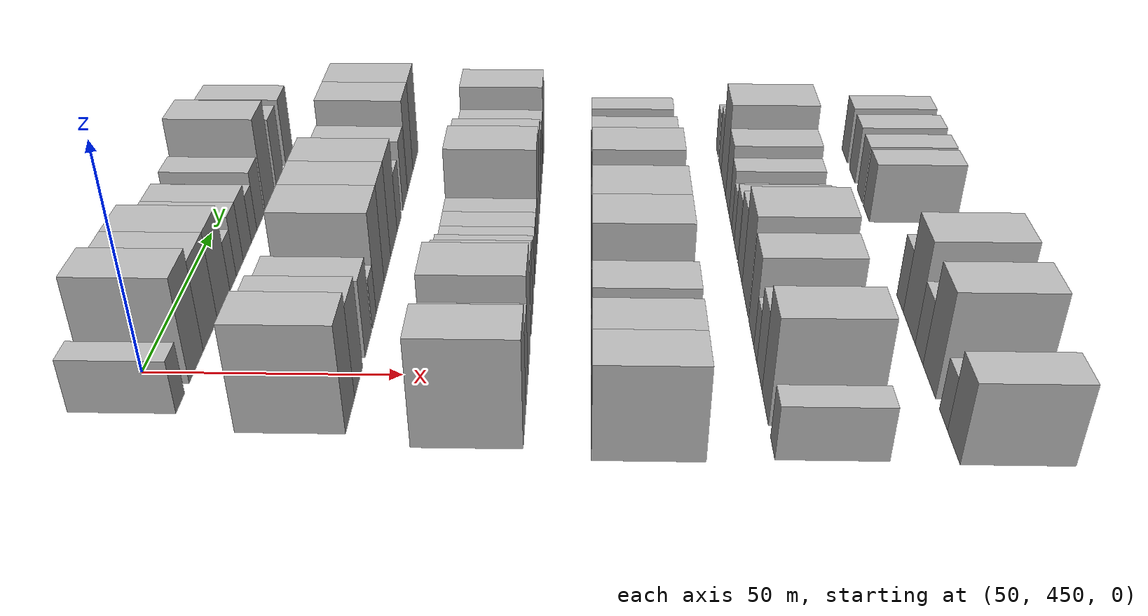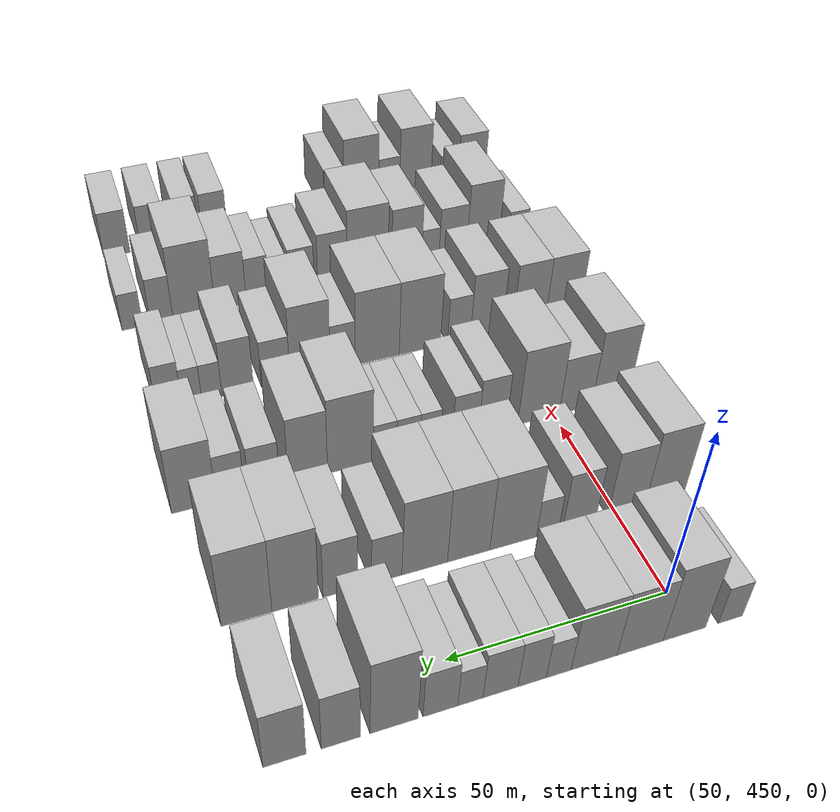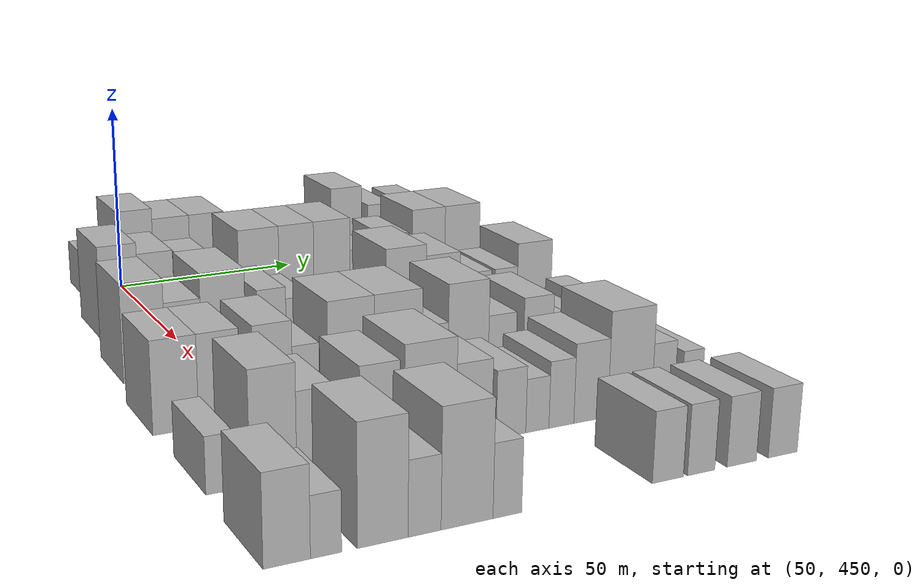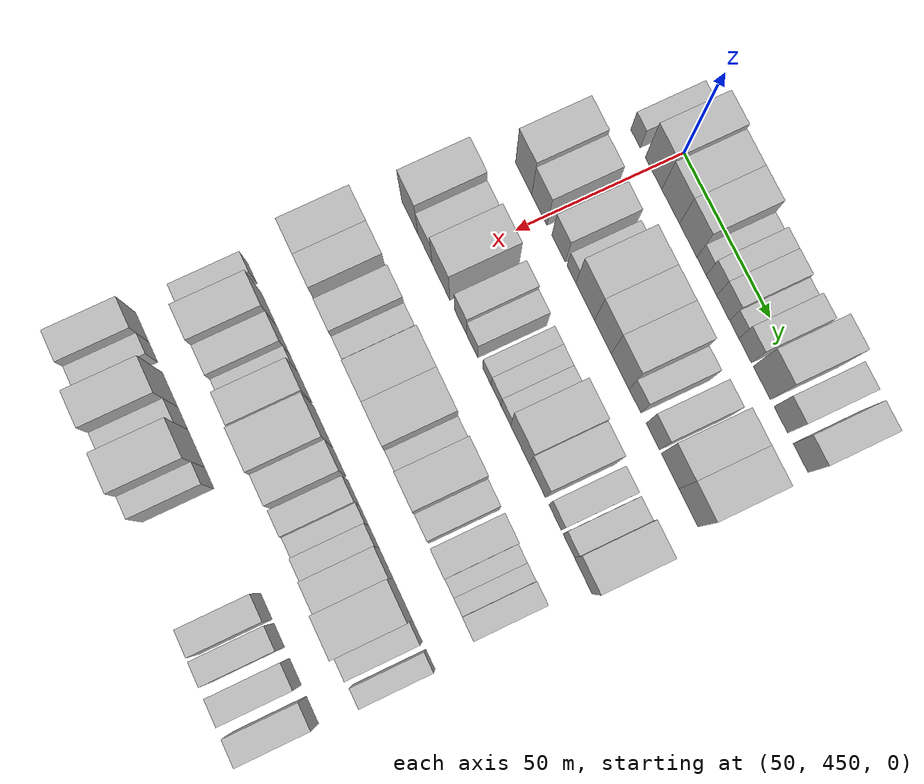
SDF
<sdf version="1.6">
 <world name="default">
  <model name="building_115">
   <static>1</static>
   <pose>50.0000 440.8490 0 0.000000 0.000000 0.000000</pose>
   <link name="link">
    <pose>0 0 6.00 0 0 0</pose>
    <collision name="collision"><geometry><box><size>20.0000 5.6674 12.0000</size></box></geometry></collision>
    <visual name="visual">
     <cast_shadows>0</cast_shadows>
     <geometry><box><size>20.0000 5.6674 12.0000</size></box></geometry>
     <material>
      <script>
       <uri>model://HANNAS_wall/materials/scripts</uri>
       <uri>model://HANNAS_wall/materials/textures</uri>
       <name>vrc/HANNAS_wall</name>
      </script>
     </material>
    </visual>
   </link>
  </model>
  <model name="building_116">
   <static>1</static>
   <pose>50.0000 451.6107 0 0.000000 0.000000 0.000000</pose>
   <link name="link">
    <pose>0 0 12.00 0 0 0</pose>
    <collision name="collision"><geometry><box><size>20.0000 9.8559 24.0000</size></box></geometry></collision>
    <visual name="visual">
     <cast_shadows>0</cast_shadows>
     <geometry><box><size>20.0000 9.8559 24.0000</size></box></geometry>
     <material>
      <script>
       <uri>model://HANNAS_wall/materials/scripts</uri>
       <uri>model://HANNAS_wall/materials/textures</uri>
       <name>vrc/HANNAS_wall</name>
      </script>
     </material>
    </visual>
   </link>
  </model>
  <model name="building_117">
   <static>1</static>
   <pose>50.0000 461.7731 0 0.000000 0.000000 0.000000</pose>
   <link name="link">
    <pose>0 0 10.50 0 0 0</pose>
    <collision name="collision"><geometry><box><size>20.0000 10.4689 21.0000</size></box></geometry></collision>
    <visual name="visual">
     <cast_shadows>0</cast_shadows>
     <geometry><box><size>20.0000 10.4689 21.0000</size></box></geometry>
     <material>
      <script>
       <uri>model://HANNAS_wall/materials/scripts</uri>
       <uri>model://HANNAS_wall/materials/textures</uri>
       <name>vrc/HANNAS_wall</name>
      </script>
     </material>
    </visual>
   </link>
  </model>
  <model name="building_118">
   <static>1</static>
   <pose>50.0000 472.0924 0 0.000000 0.000000 0.000000</pose>
   <link name="link">
    <pose>0 0 10.50 0 0 0</pose>
    <collision name="collision"><geometry><box><size>20.0000 10.1697 21.0000</size></box></geometry></collision>
    <visual name="visual">
     <cast_shadows>0</cast_shadows>
     <geometry><box><size>20.0000 10.1697 21.0000</size></box></geometry>
     <material>
      <script>
       <uri>model://HANNAS_wall/materials/scripts</uri>
       <uri>model://HANNAS_wall/materials/textures</uri>
       <name>vrc/HANNAS_wall</name>
      </script>
     </material>
    </visual>
   </link>
  </model>
  <model name="building_119">
   <static>1</static>
   <pose>50.0000 479.8810 0 0.000000 0.000000 0.000000</pose>
   <link name="link">
    <pose>0 0 6.00 0 0 0</pose>
    <collision name="collision"><geometry><box><size>20.0000 5.4076 12.0000</size></box></geometry></collision>
    <visual name="visual">
     <cast_shadows>0</cast_shadows>
     <geometry><box><size>20.0000 5.4076 12.0000</size></box></geometry>
     <material>
      <script>
       <uri>model://HANNAS_wall/materials/scripts</uri>
       <uri>model://HANNAS_wall/materials/textures</uri>
       <name>vrc/HANNAS_wall</name>
      </script>
     </material>
    </visual>
   </link>
  </model>
  <model name="building_120">
   <static>1</static>
   <pose>50.0000 485.6295 0 0.000000 0.000000 0.000000</pose>
   <link name="link">
    <pose>0 0 7.50 0 0 0</pose>
    <collision name="collision"><geometry><box><size>20.0000 6.0892 15.0000</size></box></geometry></collision>
    <visual name="visual">
     <cast_shadows>0</cast_shadows>
     <geometry><box><size>20.0000 6.0892 15.0000</size></box></geometry>
     <material>
      <script>
       <uri>model://HANNAS_wall/materials/scripts</uri>
       <uri>model://HANNAS_wall/materials/textures</uri>
       <name>vrc/HANNAS_wall</name>
      </script>
     </material>
    </visual>
   </link>
  </model>
  <model name="building_121">
   <static>1</static>
   <pose>50.0000 492.4019 0 0.000000 0.000000 0.000000</pose>
   <link name="link">
    <pose>0 0 7.50 0 0 0</pose>
    <collision name="collision"><geometry><box><size>20.0000 7.4557 15.0000</size></box></geometry></collision>
    <visual name="visual">
     <cast_shadows>0</cast_shadows>
     <geometry><box><size>20.0000 7.4557 15.0000</size></box></geometry>
     <material>
      <script>
       <uri>model://HANNAS_wall/materials/scripts</uri>
       <uri>model://HANNAS_wall/materials/textures</uri>
       <name>vrc/HANNAS_wall</name>
      </script>
     </material>
    </visual>
   </link>
  </model>
  <model name="building_122">
   <static>1</static>
   <pose>50.0000 498.7697 0 0.000000 0.000000 0.000000</pose>
   <link name="link">
    <pose>0 0 6.00 0 0 0</pose>
    <collision name="collision"><geometry><box><size>20.0000 5.2797 12.0000</size></box></geometry></collision>
    <visual name="visual">
     <cast_shadows>0</cast_shadows>
     <geometry><box><size>20.0000 5.2797 12.0000</size></box></geometry>
     <material>
      <script>
       <uri>model://HANNAS_wall/materials/scripts</uri>
       <uri>model://HANNAS_wall/materials/textures</uri>
       <name>vrc/HANNAS_wall</name>
      </script>
     </material>
    </visual>
   </link>
  </model>
  <model name="building_123">
   <static>1</static>
   <pose>50.0000 505.0097 0 0.000000 0.000000 0.000000</pose>
   <link name="link">
    <pose>0 0 7.50 0 0 0</pose>
    <collision name="collision"><geometry><box><size>20.0000 7.2003 15.0000</size></box></geometry></collision>
    <visual name="visual">
     <cast_shadows>0</cast_shadows>
     <geometry><box><size>20.0000 7.2003 15.0000</size></box></geometry>
     <material>
      <script>
       <uri>model://HANNAS_wall/materials/scripts</uri>
       <uri>model://HANNAS_wall/materials/textures</uri>
       <name>vrc/HANNAS_wall</name>
      </script>
     </material>
    </visual>
   </link>
  </model>
  <model name="building_124">
   <static>1</static>
   <pose>50.0000 514.4846 0 0.000000 0.000000 0.000000</pose>
   <link name="link">
    <pose>0 0 12.00 0 0 0</pose>
    <collision name="collision"><geometry><box><size>20.0000 9.7494 24.0000</size></box></geometry></collision>
    <visual name="visual">
     <cast_shadows>0</cast_shadows>
     <geometry><box><size>20.0000 9.7494 24.0000</size></box></geometry>
     <material>
      <script>
       <uri>model://HANNAS_wall/materials/scripts</uri>
       <uri>model://HANNAS_wall/materials/textures</uri>
       <name>vrc/HANNAS_wall</name>
      </script>
     </material>
    </visual>
   </link>
  </model>
  <model name="building_125">
   <static>1</static>
   <pose>50.0000 525.2008 0 0.000000 0.000000 0.000000</pose>
   <link name="link">
    <pose>0 0 9.00 0 0 0</pose>
    <collision name="collision"><geometry><box><size>20.0000 7.6831 18.0000</size></box></geometry></collision>
    <visual name="visual">
     <cast_shadows>0</cast_shadows>
     <geometry><box><size>20.0000 7.6831 18.0000</size></box></geometry>
     <material>
      <script>
       <uri>model://HANNAS_wall/materials/scripts</uri>
       <uri>model://HANNAS_wall/materials/textures</uri>
       <name>vrc/HANNAS_wall</name>
      </script>
     </material>
    </visual>
   </link>
  </model>
  <model name="building_126">
   <static>1</static>
   <pose>50.0000 536.2137 0 0.000000 0.000000 0.000000</pose>
   <link name="link">
    <pose>0 0 9.00 0 0 0</pose>
    <collision name="collision"><geometry><box><size>20.0000 8.3428 18.0000</size></box></geometry></collision>
    <visual name="visual">
     <cast_shadows>0</cast_shadows>
     <geometry><box><size>20.0000 8.3428 18.0000</size></box></geometry>
     <material>
      <script>
       <uri>model://HANNAS_wall/materials/scripts</uri>
       <uri>model://HANNAS_wall/materials/textures</uri>
       <name>vrc/HANNAS_wall</name>
      </script>
     </material>
    </visual>
   </link>
  </model>
  <model name="building_241">
   <static>1</static>
   <pose>82.0000 438.0088 0 0.000000 0.000000 0.000000</pose>
   <link name="link">
    <pose>0 0 12.00 0 0 0</pose>
    <collision name="collision"><geometry><box><size>20.0000 9.9031 24.0000</size></box></geometry></collision>
    <visual name="visual">
     <cast_shadows>0</cast_shadows>
     <geometry><box><size>20.0000 9.9031 24.0000</size></box></geometry>
     <material>
      <script>
       <uri>model://HANNAS_wall/materials/scripts</uri>
       <uri>model://HANNAS_wall/materials/textures</uri>
       <name>vrc/HANNAS_wall</name>
      </script>
     </material>
    </visual>
   </link>
  </model>
  <model name="building_242">
   <static>1</static>
   <pose>82.0000 447.6206 0 0.000000 0.000000 0.000000</pose>
   <link name="link">
    <pose>0 0 10.50 0 0 0</pose>
    <collision name="collision"><geometry><box><size>20.0000 9.3204 21.0000</size></box></geometry></collision>
    <visual name="visual">
     <cast_shadows>0</cast_shadows>
     <geometry><box><size>20.0000 9.3204 21.0000</size></box></geometry>
     <material>
      <script>
       <uri>model://HANNAS_wall/materials/scripts</uri>
       <uri>model://HANNAS_wall/materials/textures</uri>
       <name>vrc/HANNAS_wall</name>
      </script>
     </material>
    </visual>
   </link>
  </model>
  <model name="building_243">
   <static>1</static>
   <pose>82.0000 459.3253 0 0.000000 0.000000 0.000000</pose>
   <link name="link">
    <pose>0 0 9.00 0 0 0</pose>
    <collision name="collision"><geometry><box><size>20.0000 8.0890 18.0000</size></box></geometry></collision>
    <visual name="visual">
     <cast_shadows>0</cast_shadows>
     <geometry><box><size>20.0000 8.0890 18.0000</size></box></geometry>
     <material>
      <script>
       <uri>model://HANNAS_wall/materials/scripts</uri>
       <uri>model://HANNAS_wall/materials/textures</uri>
       <name>vrc/HANNAS_wall</name>
      </script>
     </material>
    </visual>
   </link>
  </model>
  <model name="building_244">
   <static>1</static>
   <pose>82.0000 467.0407 0 0.000000 0.000000 0.000000</pose>
   <link name="link">
    <pose>0 0 6.00 0 0 0</pose>
    <collision name="collision"><geometry><box><size>20.0000 5.3417 12.0000</size></box></geometry></collision>
    <visual name="visual">
     <cast_shadows>0</cast_shadows>
     <geometry><box><size>20.0000 5.3417 12.0000</size></box></geometry>
     <material>
      <script>
       <uri>model://HANNAS_wall/materials/scripts</uri>
       <uri>model://HANNAS_wall/materials/textures</uri>
       <name>vrc/HANNAS_wall</name>
      </script>
     </material>
    </visual>
   </link>
  </model>
  <model name="building_245">
   <static>1</static>
   <pose>82.0000 475.2869 0 0.000000 0.000000 0.000000</pose>
   <link name="link">
    <pose>0 0 12.00 0 0 0</pose>
    <collision name="collision"><geometry><box><size>20.0000 11.1506 24.0000</size></box></geometry></collision>
    <visual name="visual">
     <cast_shadows>0</cast_shadows>
     <geometry><box><size>20.0000 11.1506 24.0000</size></box></geometry>
     <material>
      <script>
       <uri>model://HANNAS_wall/materials/scripts</uri>
       <uri>model://HANNAS_wall/materials/textures</uri>
       <name>vrc/HANNAS_wall</name>
      </script>
     </material>
    </visual>
   </link>
  </model>
  <model name="building_246">
   <static>1</static>
   <pose>82.0000 485.7920 0 0.000000 0.000000 0.000000</pose>
   <link name="link">
    <pose>0 0 12.00 0 0 0</pose>
    <collision name="collision"><geometry><box><size>20.0000 9.8596 24.0000</size></box></geometry></collision>
    <visual name="visual">
     <cast_shadows>0</cast_shadows>
     <geometry><box><size>20.0000 9.8596 24.0000</size></box></geometry>
     <material>
      <script>
       <uri>model://HANNAS_wall/materials/scripts</uri>
       <uri>model://HANNAS_wall/materials/textures</uri>
       <name>vrc/HANNAS_wall</name>
      </script>
     </material>
    </visual>
   </link>
  </model>
  <model name="building_247">
   <static>1</static>
   <pose>82.0000 495.9526 0 0.000000 0.000000 0.000000</pose>
   <link name="link">
    <pose>0 0 12.00 0 0 0</pose>
    <collision name="collision"><geometry><box><size>20.0000 10.4616 24.0000</size></box></geometry></collision>
    <visual name="visual">
     <cast_shadows>0</cast_shadows>
     <geometry><box><size>20.0000 10.4616 24.0000</size></box></geometry>
     <material>
      <script>
       <uri>model://HANNAS_wall/materials/scripts</uri>
       <uri>model://HANNAS_wall/materials/textures</uri>
       <name>vrc/HANNAS_wall</name>
      </script>
     </material>
    </visual>
   </link>
  </model>
  <model name="building_248">
   <static>1</static>
   <pose>82.0000 504.6095 0 0.000000 0.000000 0.000000</pose>
   <link name="link">
    <pose>0 0 7.50 0 0 0</pose>
    <collision name="collision"><geometry><box><size>20.0000 6.8522 15.0000</size></box></geometry></collision>
    <visual name="visual">
     <cast_shadows>0</cast_shadows>
     <geometry><box><size>20.0000 6.8522 15.0000</size></box></geometry>
     <material>
      <script>
       <uri>model://HANNAS_wall/materials/scripts</uri>
       <uri>model://HANNAS_wall/materials/textures</uri>
       <name>vrc/HANNAS_wall</name>
      </script>
     </material>
    </visual>
   </link>
  </model>
  <model name="building_249">
   <static>1</static>
   <pose>82.0000 514.8905 0 0.000000 0.000000 0.000000</pose>
   <link name="link">
    <pose>0 0 9.00 0 0 0</pose>
    <collision name="collision"><geometry><box><size>20.0000 7.7097 18.0000</size></box></geometry></collision>
    <visual name="visual">
     <cast_shadows>0</cast_shadows>
     <geometry><box><size>20.0000 7.7097 18.0000</size></box></geometry>
     <material>
      <script>
       <uri>model://HANNAS_wall/materials/scripts</uri>
       <uri>model://HANNAS_wall/materials/textures</uri>
       <name>vrc/HANNAS_wall</name>
      </script>
     </material>
    </visual>
   </link>
  </model>
  <model name="building_250">
   <static>1</static>
   <pose>82.0000 524.7805 0 0.000000 0.000000 0.000000</pose>
   <link name="link">
    <pose>0 0 12.00 0 0 0</pose>
    <collision name="collision"><geometry><box><size>20.0000 10.0704 24.0000</size></box></geometry></collision>
    <visual name="visual">
     <cast_shadows>0</cast_shadows>
     <geometry><box><size>20.0000 10.0704 24.0000</size></box></geometry>
     <material>
      <script>
       <uri>model://HANNAS_wall/materials/scripts</uri>
       <uri>model://HANNAS_wall/materials/textures</uri>
       <name>vrc/HANNAS_wall</name>
      </script>
     </material>
    </visual>
   </link>
  </model>
  <model name="building_251">
   <static>1</static>
   <pose>82.0000 535.2192 0 0.000000 0.000000 0.000000</pose>
   <link name="link">
    <pose>0 0 12.00 0 0 0</pose>
    <collision name="collision"><geometry><box><size>20.0000 10.8071 24.0000</size></box></geometry></collision>
    <visual name="visual">
     <cast_shadows>0</cast_shadows>
     <geometry><box><size>20.0000 10.8071 24.0000</size></box></geometry>
     <material>
      <script>
       <uri>model://HANNAS_wall/materials/scripts</uri>
       <uri>model://HANNAS_wall/materials/textures</uri>
       <name>vrc/HANNAS_wall</name>
      </script>
     </material>
    </visual>
   </link>
  </model>
  <model name="building_362">
   <static>1</static>
   <pose>114.0000 434.7817 0 0.000000 0.000000 0.000000</pose>
   <link name="link">
    <pose>0 0 12.00 0 0 0</pose>
    <collision name="collision"><geometry><box><size>20.0000 10.1036 24.0000</size></box></geometry></collision>
    <visual name="visual">
     <cast_shadows>0</cast_shadows>
     <geometry><box><size>20.0000 10.1036 24.0000</size></box></geometry>
     <material>
      <script>
       <uri>model://HANNAS_wall/materials/scripts</uri>
       <uri>model://HANNAS_wall/materials/textures</uri>
       <name>vrc/HANNAS_wall</name>
      </script>
     </material>
    </visual>
   </link>
  </model>
  <model name="building_363">
   <static>1</static>
   <pose>114.0000 444.2483 0 0.000000 0.000000 0.000000</pose>
   <link name="link">
    <pose>0 0 9.00 0 0 0</pose>
    <collision name="collision"><geometry><box><size>20.0000 8.8295 18.0000</size></box></geometry></collision>
    <visual name="visual">
     <cast_shadows>0</cast_shadows>
     <geometry><box><size>20.0000 8.8295 18.0000</size></box></geometry>
     <material>
      <script>
       <uri>model://HANNAS_wall/materials/scripts</uri>
       <uri>model://HANNAS_wall/materials/textures</uri>
       <name>vrc/HANNAS_wall</name>
      </script>
     </material>
    </visual>
   </link>
  </model>
  <model name="building_364">
   <static>1</static>
   <pose>114.0000 454.1646 0 0.000000 0.000000 0.000000</pose>
   <link name="link">
    <pose>0 0 12.00 0 0 0</pose>
    <collision name="collision"><geometry><box><size>20.0000 11.0031 24.0000</size></box></geometry></collision>
    <visual name="visual">
     <cast_shadows>0</cast_shadows>
     <geometry><box><size>20.0000 11.0031 24.0000</size></box></geometry>
     <material>
      <script>
       <uri>model://HANNAS_wall/materials/scripts</uri>
       <uri>model://HANNAS_wall/materials/textures</uri>
       <name>vrc/HANNAS_wall</name>
      </script>
     </material>
    </visual>
   </link>
  </model>
  <model name="building_365">
   <static>1</static>
   <pose>114.0000 466.3253 0 0.000000 0.000000 0.000000</pose>
   <link name="link">
    <pose>0 0 9.00 0 0 0</pose>
    <collision name="collision"><geometry><box><size>20.0000 7.3182 18.0000</size></box></geometry></collision>
    <visual name="visual">
     <cast_shadows>0</cast_shadows>
     <geometry><box><size>20.0000 7.3182 18.0000</size></box></geometry>
     <material>
      <script>
       <uri>model://HANNAS_wall/materials/scripts</uri>
       <uri>model://HANNAS_wall/materials/textures</uri>
       <name>vrc/HANNAS_wall</name>
      </script>
     </material>
    </visual>
   </link>
  </model>
  <model name="building_366">
   <static>1</static>
   <pose>114.0000 473.3398 0 0.000000 0.000000 0.000000</pose>
   <link name="link">
    <pose>0 0 7.50 0 0 0</pose>
    <collision name="collision"><geometry><box><size>20.0000 6.7108 15.0000</size></box></geometry></collision>
    <visual name="visual">
     <cast_shadows>0</cast_shadows>
     <geometry><box><size>20.0000 6.7108 15.0000</size></box></geometry>
     <material>
      <script>
       <uri>model://HANNAS_wall/materials/scripts</uri>
       <uri>model://HANNAS_wall/materials/textures</uri>
       <name>vrc/HANNAS_wall</name>
      </script>
     </material>
    </visual>
   </link>
  </model>
  <model name="building_367">
   <static>1</static>
   <pose>114.0000 482.2503 0 0.000000 0.000000 0.000000</pose>
   <link name="link">
    <pose>0 0 6.00 0 0 0</pose>
    <collision name="collision"><geometry><box><size>20.0000 5.1102 12.0000</size></box></geometry></collision>
    <visual name="visual">
     <cast_shadows>0</cast_shadows>
     <geometry><box><size>20.0000 5.1102 12.0000</size></box></geometry>
     <material>
      <script>
       <uri>model://HANNAS_wall/materials/scripts</uri>
       <uri>model://HANNAS_wall/materials/textures</uri>
       <name>vrc/HANNAS_wall</name>
      </script>
     </material>
    </visual>
   </link>
  </model>
  <model name="building_368">
   <static>1</static>
   <pose>114.0000 487.7991 0 0.000000 0.000000 0.000000</pose>
   <link name="link">
    <pose>0 0 6.00 0 0 0</pose>
    <collision name="collision"><geometry><box><size>20.0000 5.9874 12.0000</size></box></geometry></collision>
    <visual name="visual">
     <cast_shadows>0</cast_shadows>
     <geometry><box><size>20.0000 5.9874 12.0000</size></box></geometry>
     <material>
      <script>
       <uri>model://HANNAS_wall/materials/scripts</uri>
       <uri>model://HANNAS_wall/materials/textures</uri>
       <name>vrc/HANNAS_wall</name>
      </script>
     </material>
    </visual>
   </link>
  </model>
  <model name="building_369">
   <static>1</static>
   <pose>114.0000 493.6747 0 0.000000 0.000000 0.000000</pose>
   <link name="link">
    <pose>0 0 6.00 0 0 0</pose>
    <collision name="collision"><geometry><box><size>20.0000 5.7638 12.0000</size></box></geometry></collision>
    <visual name="visual">
     <cast_shadows>0</cast_shadows>
     <geometry><box><size>20.0000 5.7638 12.0000</size></box></geometry>
     <material>
      <script>
       <uri>model://HANNAS_wall/materials/scripts</uri>
       <uri>model://HANNAS_wall/materials/textures</uri>
       <name>vrc/HANNAS_wall</name>
      </script>
     </material>
    </visual>
   </link>
  </model>
  <model name="building_370">
   <static>1</static>
   <pose>114.0000 502.1155 0 0.000000 0.000000 0.000000</pose>
   <link name="link">
    <pose>0 0 12.00 0 0 0</pose>
    <collision name="collision"><geometry><box><size>20.0000 11.1179 24.0000</size></box></geometry></collision>
    <visual name="visual">
     <cast_shadows>0</cast_shadows>
     <geometry><box><size>20.0000 11.1179 24.0000</size></box></geometry>
     <material>
      <script>
       <uri>model://HANNAS_wall/materials/scripts</uri>
       <uri>model://HANNAS_wall/materials/textures</uri>
       <name>vrc/HANNAS_wall</name>
      </script>
     </material>
    </visual>
   </link>
  </model>
  <model name="building_371">
   <static>1</static>
   <pose>114.0000 512.4070 0 0.000000 0.000000 0.000000</pose>
   <link name="link">
    <pose>0 0 10.50 0 0 0</pose>
    <collision name="collision"><geometry><box><size>20.0000 9.4650 21.0000</size></box></geometry></collision>
    <visual name="visual">
     <cast_shadows>0</cast_shadows>
     <geometry><box><size>20.0000 9.4650 21.0000</size></box></geometry>
     <material>
      <script>
       <uri>model://HANNAS_wall/materials/scripts</uri>
       <uri>model://HANNAS_wall/materials/textures</uri>
       <name>vrc/HANNAS_wall</name>
      </script>
     </material>
    </visual>
   </link>
  </model>
  <model name="building_372">
   <static>1</static>
   <pose>114.0000 522.7609 0 0.000000 0.000000 0.000000</pose>
   <link name="link">
    <pose>0 0 7.50 0 0 0</pose>
    <collision name="collision"><geometry><box><size>20.0000 7.2428 15.0000</size></box></geometry></collision>
    <visual name="visual">
     <cast_shadows>0</cast_shadows>
     <geometry><box><size>20.0000 7.2428 15.0000</size></box></geometry>
     <material>
      <script>
       <uri>model://HANNAS_wall/materials/scripts</uri>
       <uri>model://HANNAS_wall/materials/textures</uri>
       <name>vrc/HANNAS_wall</name>
      </script>
     </material>
    </visual>
   </link>
  </model>
  <model name="building_373">
   <static>1</static>
   <pose>114.0000 530.6936 0 0.000000 0.000000 0.000000</pose>
   <link name="link">
    <pose>0 0 7.50 0 0 0</pose>
    <collision name="collision"><geometry><box><size>20.0000 6.6227 15.0000</size></box></geometry></collision>
    <visual name="visual">
     <cast_shadows>0</cast_shadows>
     <geometry><box><size>20.0000 6.6227 15.0000</size></box></geometry>
     <material>
      <script>
       <uri>model://HANNAS_wall/materials/scripts</uri>
       <uri>model://HANNAS_wall/materials/textures</uri>
       <name>vrc/HANNAS_wall</name>
      </script>
     </material>
    </visual>
   </link>
  </model>
  <model name="building_374">
   <static>1</static>
   <pose>114.0000 539.1175 0 0.000000 0.000000 0.000000</pose>
   <link name="link">
    <pose>0 0 10.50 0 0 0</pose>
    <collision name="collision"><geometry><box><size>20.0000 10.2252 21.0000</size></box></geometry></collision>
    <visual name="visual">
     <cast_shadows>0</cast_shadows>
     <geometry><box><size>20.0000 10.2252 21.0000</size></box></geometry>
     <material>
      <script>
       <uri>model://HANNAS_wall/materials/scripts</uri>
       <uri>model://HANNAS_wall/materials/textures</uri>
       <name>vrc/HANNAS_wall</name>
      </script>
     </material>
    </visual>
   </link>
  </model>
  <model name="building_478">
   <static>1</static>
   <pose>146.0000 432.0566 0 0.000000 0.000000 0.000000</pose>
   <link name="link">
    <pose>0 0 10.50 0 0 0</pose>
    <collision name="collision"><geometry><box><size>20.0000 10.1136 21.0000</size></box></geometry></collision>
    <visual name="visual">
     <cast_shadows>0</cast_shadows>
     <geometry><box><size>20.0000 10.1136 21.0000</size></box></geometry>
     <material>
      <script>
       <uri>model://HANNAS_wall/materials/scripts</uri>
       <uri>model://HANNAS_wall/materials/textures</uri>
       <name>vrc/HANNAS_wall</name>
      </script>
     </material>
    </visual>
   </link>
  </model>
  <model name="building_479">
   <static>1</static>
   <pose>146.0000 441.8264 0 0.000000 0.000000 0.000000</pose>
   <link name="link">
    <pose>0 0 10.50 0 0 0</pose>
    <collision name="collision"><geometry><box><size>20.0000 9.4258 21.0000</size></box></geometry></collision>
    <visual name="visual">
     <cast_shadows>0</cast_shadows>
     <geometry><box><size>20.0000 9.4258 21.0000</size></box></geometry>
     <material>
      <script>
       <uri>model://HANNAS_wall/materials/scripts</uri>
       <uri>model://HANNAS_wall/materials/textures</uri>
       <name>vrc/HANNAS_wall</name>
      </script>
     </material>
    </visual>
   </link>
  </model>
  <model name="building_480">
   <static>1</static>
   <pose>146.0000 454.0785 0 0.000000 0.000000 0.000000</pose>
   <link name="link">
    <pose>0 0 10.50 0 0 0</pose>
    <collision name="collision"><geometry><box><size>20.0000 9.0784 21.0000</size></box></geometry></collision>
    <visual name="visual">
     <cast_shadows>0</cast_shadows>
     <geometry><box><size>20.0000 9.0784 21.0000</size></box></geometry>
     <material>
      <script>
       <uri>model://HANNAS_wall/materials/scripts</uri>
       <uri>model://HANNAS_wall/materials/textures</uri>
       <name>vrc/HANNAS_wall</name>
      </script>
     </material>
    </visual>
   </link>
  </model>
  <model name="building_481">
   <static>1</static>
   <pose>146.0000 461.8183 0 0.000000 0.000000 0.000000</pose>
   <link name="link">
    <pose>0 0 7.50 0 0 0</pose>
    <collision name="collision"><geometry><box><size>20.0000 6.4013 15.0000</size></box></geometry></collision>
    <visual name="visual">
     <cast_shadows>0</cast_shadows>
     <geometry><box><size>20.0000 6.4013 15.0000</size></box></geometry>
     <material>
      <script>
       <uri>model://HANNAS_wall/materials/scripts</uri>
       <uri>model://HANNAS_wall/materials/textures</uri>
       <name>vrc/HANNAS_wall</name>
      </script>
     </material>
    </visual>
   </link>
  </model>
  <model name="building_482">
   <static>1</static>
   <pose>146.0000 472.6911 0 0.000000 0.000000 0.000000</pose>
   <link name="link">
    <pose>0 0 12.00 0 0 0</pose>
    <collision name="collision"><geometry><box><size>20.0000 11.3442 24.0000</size></box></geometry></collision>
    <visual name="visual">
     <cast_shadows>0</cast_shadows>
     <geometry><box><size>20.0000 11.3442 24.0000</size></box></geometry>
     <material>
      <script>
       <uri>model://HANNAS_wall/materials/scripts</uri>
       <uri>model://HANNAS_wall/materials/textures</uri>
       <name>vrc/HANNAS_wall</name>
      </script>
     </material>
    </visual>
   </link>
  </model>
  <model name="building_483">
   <static>1</static>
   <pose>146.0000 484.3176 0 0.000000 0.000000 0.000000</pose>
   <link name="link">
    <pose>0 0 12.00 0 0 0</pose>
    <collision name="collision"><geometry><box><size>20.0000 11.9088 24.0000</size></box></geometry></collision>
    <visual name="visual">
     <cast_shadows>0</cast_shadows>
     <geometry><box><size>20.0000 11.9088 24.0000</size></box></geometry>
     <material>
      <script>
       <uri>model://HANNAS_wall/materials/scripts</uri>
       <uri>model://HANNAS_wall/materials/textures</uri>
       <name>vrc/HANNAS_wall</name>
      </script>
     </material>
    </visual>
   </link>
  </model>
  <model name="building_484">
   <static>1</static>
   <pose>146.0000 493.5984 0 0.000000 0.000000 0.000000</pose>
   <link name="link">
    <pose>0 0 7.50 0 0 0</pose>
    <collision name="collision"><geometry><box><size>20.0000 6.6528 15.0000</size></box></geometry></collision>
    <visual name="visual">
     <cast_shadows>0</cast_shadows>
     <geometry><box><size>20.0000 6.6528 15.0000</size></box></geometry>
     <material>
      <script>
       <uri>model://HANNAS_wall/materials/scripts</uri>
       <uri>model://HANNAS_wall/materials/textures</uri>
       <name>vrc/HANNAS_wall</name>
      </script>
     </material>
    </visual>
   </link>
  </model>
  <model name="building_485">
   <static>1</static>
   <pose>146.0000 502.2058 0 0.000000 0.000000 0.000000</pose>
   <link name="link">
    <pose>0 0 12.00 0 0 0</pose>
    <collision name="collision"><geometry><box><size>20.0000 10.5621 24.0000</size></box></geometry></collision>
    <visual name="visual">
     <cast_shadows>0</cast_shadows>
     <geometry><box><size>20.0000 10.5621 24.0000</size></box></geometry>
     <material>
      <script>
       <uri>model://HANNAS_wall/materials/scripts</uri>
       <uri>model://HANNAS_wall/materials/textures</uri>
       <name>vrc/HANNAS_wall</name>
      </script>
     </material>
    </visual>
   </link>
  </model>
  <model name="building_486">
   <static>1</static>
   <pose>146.0000 511.1826 0 0.000000 0.000000 0.000000</pose>
   <link name="link">
    <pose>0 0 7.50 0 0 0</pose>
    <collision name="collision"><geometry><box><size>20.0000 7.3914 15.0000</size></box></geometry></collision>
    <visual name="visual">
     <cast_shadows>0</cast_shadows>
     <geometry><box><size>20.0000 7.3914 15.0000</size></box></geometry>
     <material>
      <script>
       <uri>model://HANNAS_wall/materials/scripts</uri>
       <uri>model://HANNAS_wall/materials/textures</uri>
       <name>vrc/HANNAS_wall</name>
      </script>
     </material>
    </visual>
   </link>
  </model>
  <model name="building_487">
   <static>1</static>
   <pose>146.0000 520.8997 0 0.000000 0.000000 0.000000</pose>
   <link name="link">
    <pose>0 0 9.00 0 0 0</pose>
    <collision name="collision"><geometry><box><size>20.0000 8.0429 18.0000</size></box></geometry></collision>
    <visual name="visual">
     <cast_shadows>0</cast_shadows>
     <geometry><box><size>20.0000 8.0429 18.0000</size></box></geometry>
     <material>
      <script>
       <uri>model://HANNAS_wall/materials/scripts</uri>
       <uri>model://HANNAS_wall/materials/textures</uri>
       <name>vrc/HANNAS_wall</name>
      </script>
     </material>
    </visual>
   </link>
  </model>
  <model name="building_488">
   <static>1</static>
   <pose>146.0000 527.4588 0 0.000000 0.000000 0.000000</pose>
   <link name="link">
    <pose>0 0 6.00 0 0 0</pose>
    <collision name="collision"><geometry><box><size>20.0000 5.0753 12.0000</size></box></geometry></collision>
    <visual name="visual">
     <cast_shadows>0</cast_shadows>
     <geometry><box><size>20.0000 5.0753 12.0000</size></box></geometry>
     <material>
      <script>
       <uri>model://HANNAS_wall/materials/scripts</uri>
       <uri>model://HANNAS_wall/materials/textures</uri>
       <name>vrc/HANNAS_wall</name>
      </script>
     </material>
    </visual>
   </link>
  </model>
  <model name="building_489">
   <static>1</static>
   <pose>146.0000 532.4767 0 0.000000 0.000000 0.000000</pose>
   <link name="link">
    <pose>0 0 6.00 0 0 0</pose>
    <collision name="collision"><geometry><box><size>20.0000 4.9603 12.0000</size></box></geometry></collision>
    <visual name="visual">
     <cast_shadows>0</cast_shadows>
     <geometry><box><size>20.0000 4.9603 12.0000</size></box></geometry>
     <material>
      <script>
       <uri>model://HANNAS_wall/materials/scripts</uri>
       <uri>model://HANNAS_wall/materials/textures</uri>
       <name>vrc/HANNAS_wall</name>
      </script>
     </material>
    </visual>
   </link>
  </model>
  <model name="building_490">
   <static>1</static>
   <pose>146.0000 538.1422 0 0.000000 0.000000 0.000000</pose>
   <link name="link">
    <pose>0 0 7.50 0 0 0</pose>
    <collision name="collision"><geometry><box><size>20.0000 6.3708 15.0000</size></box></geometry></collision>
    <visual name="visual">
     <cast_shadows>0</cast_shadows>
     <geometry><box><size>20.0000 6.3708 15.0000</size></box></geometry>
     <material>
      <script>
       <uri>model://HANNAS_wall/materials/scripts</uri>
       <uri>model://HANNAS_wall/materials/textures</uri>
       <name>vrc/HANNAS_wall</name>
      </script>
     </material>
    </visual>
   </link>
  </model>
  <model name="building_595">
   <static>1</static>
   <pose>178.0000 430.7463 0 0.000000 0.000000 0.000000</pose>
   <link name="link">
    <pose>0 0 6.00 0 0 0</pose>
    <collision name="collision"><geometry><box><size>20.0000 5.9299 12.0000</size></box></geometry></collision>
    <visual name="visual">
     <cast_shadows>0</cast_shadows>
     <geometry><box><size>20.0000 5.9299 12.0000</size></box></geometry>
     <material>
      <script>
       <uri>model://HANNAS_wall/materials/scripts</uri>
       <uri>model://HANNAS_wall/materials/textures</uri>
       <name>vrc/HANNAS_wall</name>
      </script>
     </material>
    </visual>
   </link>
  </model>
  <model name="building_596">
   <static>1</static>
   <pose>178.0000 441.6002 0 0.000000 0.000000 0.000000</pose>
   <link name="link">
    <pose>0 0 12.00 0 0 0</pose>
    <collision name="collision"><geometry><box><size>20.0000 9.7781 24.0000</size></box></geometry></collision>
    <visual name="visual">
     <cast_shadows>0</cast_shadows>
     <geometry><box><size>20.0000 9.7781 24.0000</size></box></geometry>
     <material>
      <script>
       <uri>model://HANNAS_wall/materials/scripts</uri>
       <uri>model://HANNAS_wall/materials/textures</uri>
       <name>vrc/HANNAS_wall</name>
      </script>
     </material>
    </visual>
   </link>
  </model>
  <model name="building_597">
   <static>1</static>
   <pose>178.0000 450.6566 0 0.000000 0.000000 0.000000</pose>
   <link name="link">
    <pose>0 0 9.00 0 0 0</pose>
    <collision name="collision"><geometry><box><size>20.0000 8.3346 18.0000</size></box></geometry></collision>
    <visual name="visual">
     <cast_shadows>0</cast_shadows>
     <geometry><box><size>20.0000 8.3346 18.0000</size></box></geometry>
     <material>
      <script>
       <uri>model://HANNAS_wall/materials/scripts</uri>
       <uri>model://HANNAS_wall/materials/textures</uri>
       <name>vrc/HANNAS_wall</name>
      </script>
     </material>
    </visual>
   </link>
  </model>
  <model name="building_598">
   <static>1</static>
   <pose>178.0000 457.4311 0 0.000000 0.000000 0.000000</pose>
   <link name="link">
    <pose>0 0 6.00 0 0 0</pose>
    <collision name="collision"><geometry><box><size>20.0000 5.2143 12.0000</size></box></geometry></collision>
    <visual name="visual">
     <cast_shadows>0</cast_shadows>
     <geometry><box><size>20.0000 5.2143 12.0000</size></box></geometry>
     <material>
      <script>
       <uri>model://HANNAS_wall/materials/scripts</uri>
       <uri>model://HANNAS_wall/materials/textures</uri>
       <name>vrc/HANNAS_wall</name>
      </script>
     </material>
    </visual>
   </link>
  </model>
  <model name="building_599">
   <static>1</static>
   <pose>178.0000 464.5080 0 0.000000 0.000000 0.000000</pose>
   <link name="link">
    <pose>0 0 10.50 0 0 0</pose>
    <collision name="collision"><geometry><box><size>20.0000 8.9395 21.0000</size></box></geometry></collision>
    <visual name="visual">
     <cast_shadows>0</cast_shadows>
     <geometry><box><size>20.0000 8.9395 21.0000</size></box></geometry>
     <material>
      <script>
       <uri>model://HANNAS_wall/materials/scripts</uri>
       <uri>model://HANNAS_wall/materials/textures</uri>
       <name>vrc/HANNAS_wall</name>
      </script>
     </material>
    </visual>
   </link>
  </model>
  <model name="building_600">
   <static>1</static>
   <pose>178.0000 475.9315 0 0.000000 0.000000 0.000000</pose>
   <link name="link">
    <pose>0 0 12.00 0 0 0</pose>
    <collision name="collision"><geometry><box><size>20.0000 11.9074 24.0000</size></box></geometry></collision>
    <visual name="visual">
     <cast_shadows>0</cast_shadows>
     <geometry><box><size>20.0000 11.9074 24.0000</size></box></geometry>
     <material>
      <script>
       <uri>model://HANNAS_wall/materials/scripts</uri>
       <uri>model://HANNAS_wall/materials/textures</uri>
       <name>vrc/HANNAS_wall</name>
      </script>
     </material>
    </visual>
   </link>
  </model>
  <model name="building_601">
   <static>1</static>
   <pose>178.0000 486.1060 0 0.000000 0.000000 0.000000</pose>
   <link name="link">
    <pose>0 0 9.00 0 0 0</pose>
    <collision name="collision"><geometry><box><size>20.0000 8.4417 18.0000</size></box></geometry></collision>
    <visual name="visual">
     <cast_shadows>0</cast_shadows>
     <geometry><box><size>20.0000 8.4417 18.0000</size></box></geometry>
     <material>
      <script>
       <uri>model://HANNAS_wall/materials/scripts</uri>
       <uri>model://HANNAS_wall/materials/textures</uri>
       <name>vrc/HANNAS_wall</name>
      </script>
     </material>
    </visual>
   </link>
  </model>
  <model name="building_602">
   <static>1</static>
   <pose>178.0000 494.9160 0 0.000000 0.000000 0.000000</pose>
   <link name="link">
    <pose>0 0 7.50 0 0 0</pose>
    <collision name="collision"><geometry><box><size>20.0000 7.1783 15.0000</size></box></geometry></collision>
    <visual name="visual">
     <cast_shadows>0</cast_shadows>
     <geometry><box><size>20.0000 7.1783 15.0000</size></box></geometry>
     <material>
      <script>
       <uri>model://HANNAS_wall/materials/scripts</uri>
       <uri>model://HANNAS_wall/materials/textures</uri>
       <name>vrc/HANNAS_wall</name>
      </script>
     </material>
    </visual>
   </link>
  </model>
  <model name="building_603">
   <static>1</static>
   <pose>178.0000 501.3531 0 0.000000 0.000000 0.000000</pose>
   <link name="link">
    <pose>0 0 6.00 0 0 0</pose>
    <collision name="collision"><geometry><box><size>20.0000 5.6959 12.0000</size></box></geometry></collision>
    <visual name="visual">
     <cast_shadows>0</cast_shadows>
     <geometry><box><size>20.0000 5.6959 12.0000</size></box></geometry>
     <material>
      <script>
       <uri>model://HANNAS_wall/materials/scripts</uri>
       <uri>model://HANNAS_wall/materials/textures</uri>
       <name>vrc/HANNAS_wall</name>
      </script>
     </material>
    </visual>
   </link>
  </model>
  <model name="building_604">
   <static>1</static>
   <pose>178.0000 507.3184 0 0.000000 0.000000 0.000000</pose>
   <link name="link">
    <pose>0 0 7.50 0 0 0</pose>
    <collision name="collision"><geometry><box><size>20.0000 6.2347 15.0000</size></box></geometry></collision>
    <visual name="visual">
     <cast_shadows>0</cast_shadows>
     <geometry><box><size>20.0000 6.2347 15.0000</size></box></geometry>
     <material>
      <script>
       <uri>model://HANNAS_wall/materials/scripts</uri>
       <uri>model://HANNAS_wall/materials/textures</uri>
       <name>vrc/HANNAS_wall</name>
      </script>
     </material>
    </visual>
   </link>
  </model>
  <model name="building_605">
   <static>1</static>
   <pose>178.0000 514.7417 0 0.000000 0.000000 0.000000</pose>
   <link name="link">
    <pose>0 0 9.00 0 0 0</pose>
    <collision name="collision"><geometry><box><size>20.0000 8.6118 18.0000</size></box></geometry></collision>
    <visual name="visual">
     <cast_shadows>0</cast_shadows>
     <geometry><box><size>20.0000 8.6118 18.0000</size></box></geometry>
     <material>
      <script>
       <uri>model://HANNAS_wall/materials/scripts</uri>
       <uri>model://HANNAS_wall/materials/textures</uri>
       <name>vrc/HANNAS_wall</name>
      </script>
     </material>
    </visual>
   </link>
  </model>
  <model name="building_606">
   <static>1</static>
   <pose>178.0000 524.7789 0 0.000000 0.000000 0.000000</pose>
   <link name="link">
    <pose>0 0 12.00 0 0 0</pose>
    <collision name="collision"><geometry><box><size>20.0000 11.4627 24.0000</size></box></geometry></collision>
    <visual name="visual">
     <cast_shadows>0</cast_shadows>
     <geometry><box><size>20.0000 11.4627 24.0000</size></box></geometry>
     <material>
      <script>
       <uri>model://HANNAS_wall/materials/scripts</uri>
       <uri>model://HANNAS_wall/materials/textures</uri>
       <name>vrc/HANNAS_wall</name>
      </script>
     </material>
    </visual>
   </link>
  </model>
  <model name="building_607">
   <static>1</static>
   <pose>178.0000 533.5523 0 0.000000 0.000000 0.000000</pose>
   <link name="link">
    <pose>0 0 7.50 0 0 0</pose>
    <collision name="collision"><geometry><box><size>20.0000 6.0842 15.0000</size></box></geometry></collision>
    <visual name="visual">
     <cast_shadows>0</cast_shadows>
     <geometry><box><size>20.0000 6.0842 15.0000</size></box></geometry>
     <material>
      <script>
       <uri>model://HANNAS_wall/materials/scripts</uri>
       <uri>model://HANNAS_wall/materials/textures</uri>
       <name>vrc/HANNAS_wall</name>
      </script>
     </material>
    </visual>
   </link>
  </model>
  <model name="building_608">
   <static>1</static>
   <pose>178.0000 541.3381 0 0.000000 0.000000 0.000000</pose>
   <link name="link">
    <pose>0 0 6.00 0 0 0</pose>
    <collision name="collision"><geometry><box><size>20.0000 5.4874 12.0000</size></box></geometry></collision>
    <visual name="visual">
     <cast_shadows>0</cast_shadows>
     <geometry><box><size>20.0000 5.4874 12.0000</size></box></geometry>
     <material>
      <script>
       <uri>model://HANNAS_wall/materials/scripts</uri>
       <uri>model://HANNAS_wall/materials/textures</uri>
       <name>vrc/HANNAS_wall</name>
      </script>
     </material>
    </visual>
   </link>
  </model>
  <model name="building_724">
   <static>1</static>
   <pose>210.0000 431.5650 0 0.000000 0.000000 0.000000</pose>
   <link name="link">
    <pose>0 0 9.00 0 0 0</pose>
    <collision name="collision"><geometry><box><size>20.0000 8.7977 18.0000</size></box></geometry></collision>
    <visual name="visual">
     <cast_shadows>0</cast_shadows>
     <geometry><box><size>20.0000 8.7977 18.0000</size></box></geometry>
     <material>
      <script>
       <uri>model://HANNAS_wall/materials/scripts</uri>
       <uri>model://HANNAS_wall/materials/textures</uri>
       <name>vrc/HANNAS_wall</name>
      </script>
     </material>
    </visual>
   </link>
  </model>
  <model name="building_725">
   <static>1</static>
   <pose>210.0000 438.9319 0 0.000000 0.000000 0.000000</pose>
   <link name="link">
    <pose>0 0 6.00 0 0 0</pose>
    <collision name="collision"><geometry><box><size>20.0000 5.9362 12.0000</size></box></geometry></collision>
    <visual name="visual">
     <cast_shadows>0</cast_shadows>
     <geometry><box><size>20.0000 5.9362 12.0000</size></box></geometry>
     <material>
      <script>
       <uri>model://HANNAS_wall/materials/scripts</uri>
       <uri>model://HANNAS_wall/materials/textures</uri>
       <name>vrc/HANNAS_wall</name>
      </script>
     </material>
    </visual>
   </link>
  </model>
  <model name="building_726">
   <static>1</static>
   <pose>210.0000 449.9128 0 0.000000 0.000000 0.000000</pose>
   <link name="link">
    <pose>0 0 12.00 0 0 0</pose>
    <collision name="collision"><geometry><box><size>20.0000 10.0257 24.0000</size></box></geometry></collision>
    <visual name="visual">
     <cast_shadows>0</cast_shadows>
     <geometry><box><size>20.0000 10.0257 24.0000</size></box></geometry>
     <material>
      <script>
       <uri>model://HANNAS_wall/materials/scripts</uri>
       <uri>model://HANNAS_wall/materials/textures</uri>
       <name>vrc/HANNAS_wall</name>
      </script>
     </material>
    </visual>
   </link>
  </model>
  <model name="building_727">
   <static>1</static>
   <pose>210.0000 458.2433 0 0.000000 0.000000 0.000000</pose>
   <link name="link">
    <pose>0 0 7.50 0 0 0</pose>
    <collision name="collision"><geometry><box><size>20.0000 6.6353 15.0000</size></box></geometry></collision>
    <visual name="visual">
     <cast_shadows>0</cast_shadows>
     <geometry><box><size>20.0000 6.6353 15.0000</size></box></geometry>
     <material>
      <script>
       <uri>model://HANNAS_wall/materials/scripts</uri>
       <uri>model://HANNAS_wall/materials/textures</uri>
       <name>vrc/HANNAS_wall</name>
      </script>
     </material>
    </visual>
   </link>
  </model>
  <model name="building_728">
   <static>1</static>
   <pose>210.0000 466.9604 0 0.000000 0.000000 0.000000</pose>
   <link name="link">
    <pose>0 0 12.00 0 0 0</pose>
    <collision name="collision"><geometry><box><size>20.0000 10.7990 24.0000</size></box></geometry></collision>
    <visual name="visual">
     <cast_shadows>0</cast_shadows>
     <geometry><box><size>20.0000 10.7990 24.0000</size></box></geometry>
     <material>
      <script>
       <uri>model://HANNAS_wall/materials/scripts</uri>
       <uri>model://HANNAS_wall/materials/textures</uri>
       <name>vrc/HANNAS_wall</name>
      </script>
     </material>
    </visual>
   </link>
  </model>
  <model name="building_729">
   <static>1</static>
   <pose>210.0000 475.4215 0 0.000000 0.000000 0.000000</pose>
   <link name="link">
    <pose>0 0 7.50 0 0 0</pose>
    <collision name="collision"><geometry><box><size>20.0000 6.1232 15.0000</size></box></geometry></collision>
    <visual name="visual">
     <cast_shadows>0</cast_shadows>
     <geometry><box><size>20.0000 6.1232 15.0000</size></box></geometry>
     <material>
      <script>
       <uri>model://HANNAS_wall/materials/scripts</uri>
       <uri>model://HANNAS_wall/materials/textures</uri>
       <name>vrc/HANNAS_wall</name>
      </script>
     </material>
    </visual>
   </link>
  </model>
  <model name="building_730">
   <static>1</static>
   <pose>210.0000 511.5348 0 0.000000 0.000000 0.000000</pose>
   <link name="link">
    <pose>0 0 7.50 0 0 0</pose>
    <collision name="collision"><geometry><box><size>20.0000 7.3678 15.0000</size></box></geometry></collision>
    <visual name="visual">
     <cast_shadows>0</cast_shadows>
     <geometry><box><size>20.0000 7.3678 15.0000</size></box></geometry>
     <material>
      <script>
       <uri>model://HANNAS_wall/materials/scripts</uri>
       <uri>model://HANNAS_wall/materials/textures</uri>
       <name>vrc/HANNAS_wall</name>
      </script>
     </material>
    </visual>
   </link>
  </model>
  <model name="building_731">
   <static>1</static>
   <pose>210.0000 519.5387 0 0.000000 0.000000 0.000000</pose>
   <link name="link">
    <pose>0 0 7.50 0 0 0</pose>
    <collision name="collision"><geometry><box><size>20.0000 6.6400 15.0000</size></box></geometry></collision>
    <visual name="visual">
     <cast_shadows>0</cast_shadows>
     <geometry><box><size>20.0000 6.6400 15.0000</size></box></geometry>
     <material>
      <script>
       <uri>model://HANNAS_wall/materials/scripts</uri>
       <uri>model://HANNAS_wall/materials/textures</uri>
       <name>vrc/HANNAS_wall</name>
      </script>
     </material>
    </visual>
   </link>
  </model>
  <model name="building_732">
   <static>1</static>
   <pose>210.0000 529.5260 0 0.000000 0.000000 0.000000</pose>
   <link name="link">
    <pose>0 0 7.50 0 0 0</pose>
    <collision name="collision"><geometry><box><size>20.0000 7.3347 15.0000</size></box></geometry></collision>
    <visual name="visual">
     <cast_shadows>0</cast_shadows>
     <geometry><box><size>20.0000 7.3347 15.0000</size></box></geometry>
     <material>
      <script>
       <uri>model://HANNAS_wall/materials/scripts</uri>
       <uri>model://HANNAS_wall/materials/textures</uri>
       <name>vrc/HANNAS_wall</name>
      </script>
     </material>
    </visual>
   </link>
  </model>
  <model name="building_733">
   <static>1</static>
   <pose>210.0000 539.9136 0 0.000000 0.000000 0.000000</pose>
   <link name="link">
    <pose>0 0 7.50 0 0 0</pose>
    <collision name="collision"><geometry><box><size>20.0000 7.4404 15.0000</size></box></geometry></collision>
    <visual name="visual">
     <cast_shadows>0</cast_shadows>
     <geometry><box><size>20.0000 7.4404 15.0000</size></box></geometry>
     <material>
      <script>
       <uri>model://HANNAS_wall/materials/scripts</uri>
       <uri>model://HANNAS_wall/materials/textures</uri>
       <name>vrc/HANNAS_wall</name>
      </script>
     </material>
    </visual>
   </link>
  </model>
 </world>
</sdf>
